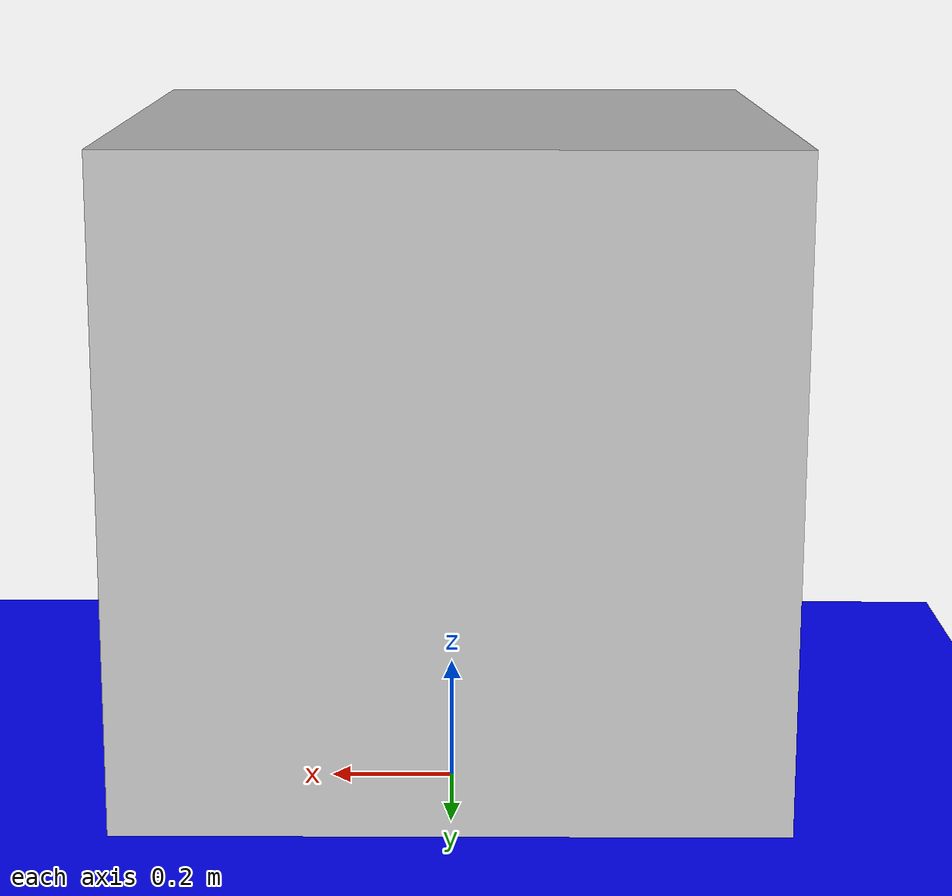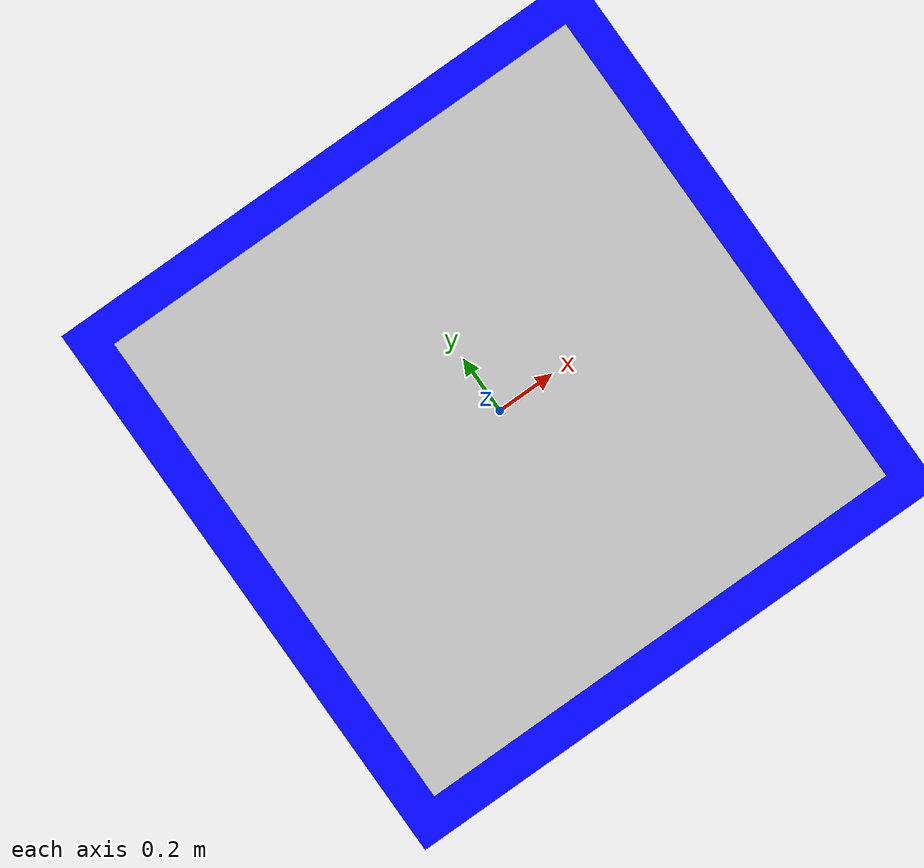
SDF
<?xml version="1.0"?>
<sdf version="1.10">
  <world name="nogravity_world">

    <!-- Core simulation systems -->
    <plugin filename="gz-sim-physics-system" name="gz::sim::systems::Physics"/>
    <plugin filename="gz-sim-user-commands-system" name="gz::sim::systems::UserCommands"/>
    <plugin filename="gz-sim-scene-broadcaster-system" name="gz::sim::systems::SceneBroadcaster"/>
    <!-- Required for camera sensors -->
    <plugin filename="gz-sim-sensors-system" name="gz::sim::systems::Sensors">
      <render_engine>ogre2</render_engine>
    </plugin>

    <plugin
      filename="gz-sim-altimeter-system"
      name="gz::sim::systems::Altimeter">
    </plugin>
    <plugin
      filename="gz-sim-imu-system"
      name="gz::sim::systems::Imu">
    </plugin>
    <plugin
      filename="gz-sim-dvl-system"
      name="gz::sim::systems::DopplerVelocityLogSystem">
    </plugin>

    <!-- Gravity -->
    <gravity>0 0 0</gravity>

    <!-- Visual water plane -->
    <model name="water_plane">
      <static>true</static>
      <link name="link">
        <visual name="water_plane">
          <geometry>
            <plane>
              <size>100 100</size>
              <normal>0 0 1</normal>
            </plane>
          </geometry>
          <material>
            <ambient>0 0 1 0.5</ambient>
            <diffuse>0 0 1 0.5</diffuse>
            <specular>0 0 1 0.5</specular>
          </material>
        </visual>
        <pose>0 0 0 0 0 0</pose>
      </link>
      <pose>0 0 0 0 0 0</pose>
    </model>

    <!-- Floating cube with buoyancy -->
    <model name="floater_cube">
      <pose>0 0 0.6 0 0 0</pose>
      <link name="cube_link">
        <inertial>
          <mass>10.0</mass>
          <inertia>
            <ixx>0.166</ixx><iyy>0.166</iyy><izz>0.166</izz>
          </inertia>
        </inertial>
        <collision name="col">
          <geometry><box><size>1 1 1</size></box></geometry>
        </collision>
        <visual name="vis">
          <geometry><box><size>1 1 1</size></box></geometry>
        </visual>
      </link>

      <plugin filename="libsimple_buoyancy.so" name="gz::sim::systems::SimpleBuoyancy">
        <link_name>cube_link</link_name>
        <water_level>0.0</water_level>
        <fluid_density>1000.0</fluid_density>
        <volume>1.0</volume>
      </plugin>
    </model>

    <!-- Camera looking at the cube -->
    <model name="observer_camera">
      <static>true</static>
      <pose>-4 0 2 0 0 0</pose>
      <link name="camera_link">
        <sensor name="observer_camera_sensor" type="camera">
          <always_on>true</always_on>
          <update_rate>30</update_rate>
          <visualize>true</visualize>
          <camera>
            <horizontal_fov>1.047</horizontal_fov>
            <image>
              <width>640</width>
              <height>480</height>
              <format>R8G8B8</format>
            </image>
            <clip>
              <near>0.1</near>
              <far>100</far>
            </clip>
          </camera>
          <!-- Explicit Gazebo Transport topic -->
          <topic>/observer/image_raw</topic>
        </sensor>
      </link>
    </model>

  </world>
</sdf>
